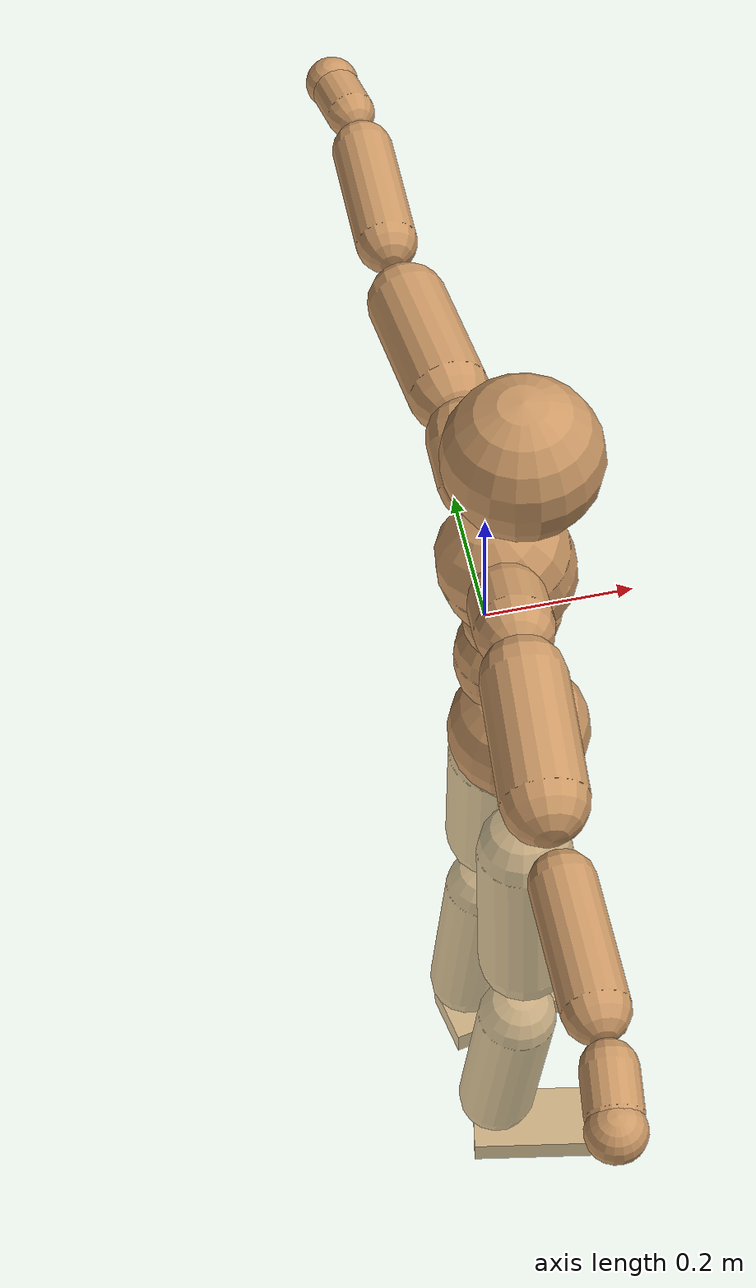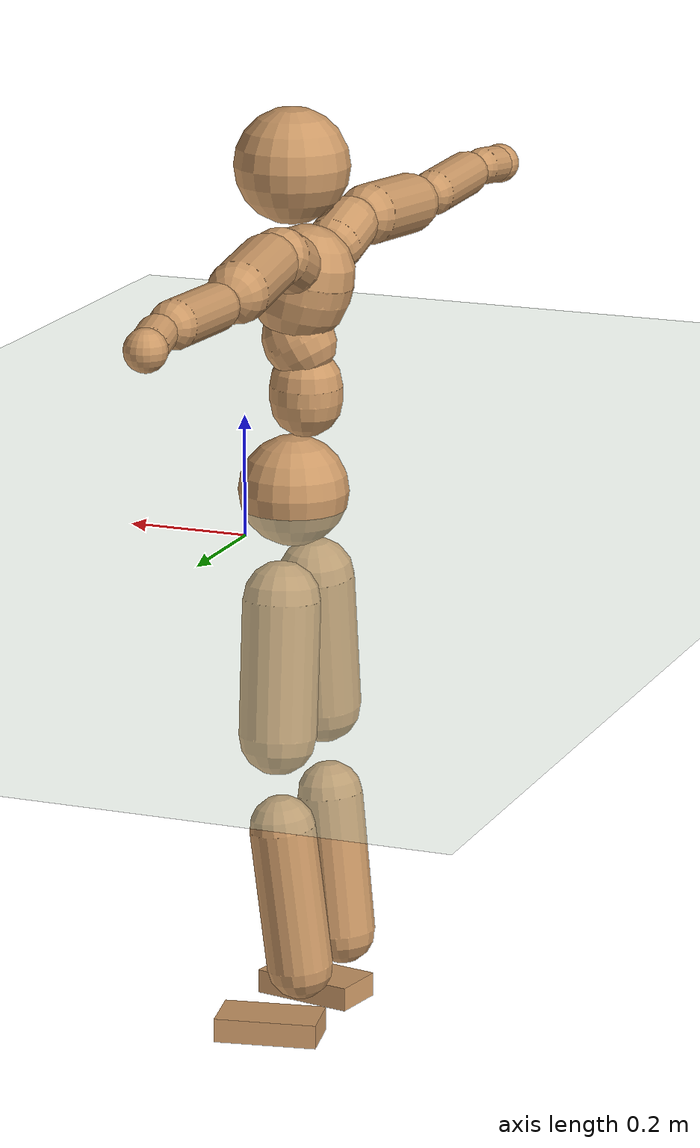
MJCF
<mujoco model="humanoid">
  <compiler coordinate="local"/>
  <default>
    <joint damping="0.0" armature="0.01" stiffness="0.0" limited="true"/>
    <geom conaffinity="1" condim="3" contype="7" margin="0.001" rgba="0.8 0.6 .4 1"/>
  </default>
  <asset>
    <texture type="skybox" builtin="gradient" rgb1=".4 .5 .6" rgb2="0 0 0" width="100" height="100"/>
    <texture builtin="flat" height="1278" mark="cross" markrgb="1 1 1" name="texgeom" random="0.01" rgb1="0.8 0.6 0.4" rgb2="0.8 0.6 0.4" type="cube" width="127"/>
    <texture builtin="checker" height="100" name="texplane" rgb1="0 0 0" rgb2="0.8 0.8 0.8" type="2d" width="100"/>
    <material name="MatPlane" reflectance="0.5" shininess="1" specular="1" texrepeat="60 60" texture="texplane"/>
    <material name="geom" texture="texgeom" texuniform="true"/>
  </asset>
  <worldbody>
    <light cutoff="100" diffuse="1 1 1" dir="-0 0 -1.3" directional="true" exponent="1" pos="0 0 1.3" specular=".1 .1 .1"/>
    <geom conaffinity="1" condim="3" name="floor" pos="0 0 0" rgba="0.8 0.9 0.8 1" size="100 100 .2" type="plane" material="MatPlane"/>
    <body name="Pelvis" pos="-0.0011 -0.2034 0.027">
      <freejoint name="Pelvis"/>
      <geom type="sphere" contype="1" conaffinity="1" density="500" size="0.0925" pos="0.0000 0.0000 0.0000" name="Pelvis"/>
      <body name="L_Hip" pos="-0.0105 0.0732 -0.0892">
        <joint name="L_Hip_x" type="hinge" pos="0 0 0" axis="1 0 0" stiffness="800" damping="80" armature="0.02" range="-180.0000 180.0000"/>
        <joint name="L_Hip_y" type="hinge" pos="0 0 0" axis="0 1 0" stiffness="800" damping="80" armature="0.02" range="-180.0000 180.0000"/>
        <joint name="L_Hip_z" type="hinge" pos="0 0 0" axis="0 0 1" stiffness="800" damping="80" armature="0.02" range="-180.0000 180.0000"/>
        <geom type="capsule" contype="1" conaffinity="1" density="500" fromto="-0.0004 0.0069 -0.0764 -0.0016 0.0277 -0.3057" size="0.0648" name="L_Hip"/>
        <body name="L_Knee" pos="-0.002 0.0347 -0.3822">
          <joint name="L_Knee_x" type="hinge" pos="0 0 0" axis="1 0 0" stiffness="800" damping="80" armature="0.02" range="-180.0000 180.0000"/>
          <joint name="L_Knee_y" type="hinge" pos="0 0 0" axis="0 1 0" stiffness="800" damping="80" armature="0.02" range="-180.0000 180.0000"/>
          <joint name="L_Knee_z" type="hinge" pos="0 0 0" axis="0 0 1" stiffness="800" damping="80" armature="0.02" range="-180.0000 180.0000"/>
          <geom type="capsule" contype="1" conaffinity="1" density="500" fromto="-0.0093 -0.0025 -0.0807 -0.0372 -0.0101 -0.3227" size="0.0555" name="L_Knee"/>
          <body name="L_Ankle" pos="-0.0465 -0.0126 -0.4034">
            <joint name="L_Ankle_x" type="hinge" pos="0 0 0" axis="1 0 0" stiffness="800" damping="80" armature="0.02" range="-180.0000 180.0000"/>
            <joint name="L_Ankle_y" type="hinge" pos="0 0 0" axis="0 1 0" stiffness="800" damping="80" armature="0.02" range="-180.0000 180.0000"/>
            <joint name="L_Ankle_z" type="hinge" pos="0 0 0" axis="0 0 1" stiffness="800" damping="80" armature="0.02" range="-180.0000 180.0000"/>
            <geom type="box" contype="1" conaffinity="1" density="500" pos="0.0600 0.0113 -0.0283" size="0.0866 0.0462 0.0205" quat="0.9956 0.0000 0.0000 0.0934" name="L_Ankle"/>
            <body name="L_Toe" pos="0.1199 0.0227 -0.0566">
              <joint name="L_Toe_x" type="hinge" pos="0 0 0" axis="1 0 0" stiffness="500" damping="50" armature="0.02" range="-180.0000 180.0000"/>
              <joint name="L_Toe_y" type="hinge" pos="0 0 0" axis="0 1 0" stiffness="500" damping="50" armature="0.02" range="-180.0000 180.0000"/>
              <joint name="L_Toe_z" type="hinge" pos="0 0 0" axis="0 0 1" stiffness="500" damping="50" armature="0.02" range="-180.0000 180.0000"/>
              <geom type="box" contype="1" conaffinity="1" density="500" pos="0.0000 0.0000 0.0278" size="0.0009 0.0023 0.001" quat="0.9950 0.0000 0.0000 0.0998" name="L_Toe"/>
            </body>
          </body>
        </body>
      </body>
      <body name="R_Hip" pos="-0.0072 -0.0708 -0.0878">
        <joint name="R_Hip_x" type="hinge" pos="0 0 0" axis="1 0 0" stiffness="800" damping="80" armature="0.02" range="-180.0000 180.0000"/>
        <joint name="R_Hip_y" type="hinge" pos="0 0 0" axis="0 1 0" stiffness="800" damping="80" armature="0.02" range="-180.0000 180.0000"/>
        <joint name="R_Hip_z" type="hinge" pos="0 0 0" axis="0 0 1" stiffness="800" damping="80" armature="0.02" range="-180.0000 180.0000"/>
        <geom type="capsule" contype="1" conaffinity="1" density="500" fromto="-0.0011 -0.0081 -0.0777 -0.0042 -0.0322 -0.3109" size="0.064" name="R_Hip"/>
        <body name="R_Knee" pos="-0.0053 -0.0403 -0.3886">
          <joint name="R_Knee_x" type="hinge" pos="0 0 0" axis="1 0 0" stiffness="800" damping="80" armature="0.02" range="-180.0000 180.0000"/>
          <joint name="R_Knee_y" type="hinge" pos="0 0 0" axis="0 1 0" stiffness="800" damping="80" armature="0.02" range="-180.0000 180.0000"/>
          <joint name="R_Knee_z" type="hinge" pos="0 0 0" axis="0 0 1" stiffness="800" damping="80" armature="0.02" range="-180.0000 180.0000"/>
          <geom type="capsule" contype="1" conaffinity="1" density="500" fromto="-0.0090 0.0029 -0.0805 -0.0358 0.0115 -0.3219" size="0.0557" name="R_Knee"/>
          <body name="R_Ankle" pos="-0.0448 0.0144 -0.4024">
            <joint name="R_Ankle_x" type="hinge" pos="0 0 0" axis="1 0 0" stiffness="800" damping="80" armature="0.02" range="-180.0000 180.0000"/>
            <joint name="R_Ankle_y" type="hinge" pos="0 0 0" axis="0 1 0" stiffness="800" damping="80" armature="0.02" range="-180.0000 180.0000"/>
            <joint name="R_Ankle_z" type="hinge" pos="0 0 0" axis="0 0 1" stiffness="800" damping="80" armature="0.02" range="-180.0000 180.0000"/>
            <geom type="box" contype="1" conaffinity="1" density="500" pos="0.0617 -0.0114 -0.0244" size="0.0872 0.0464 0.0204" quat="0.9958 0.0000 0.0000 -0.0916" name="R_Ankle"/>
            <body name="R_Toe" pos="0.1233 -0.0229 -0.0487">
              <joint name="R_Toe_x" type="hinge" pos="0 0 0" axis="1 0 0" stiffness="500" damping="50" armature="0.02" range="-180.0000 180.0000"/>
              <joint name="R_Toe_y" type="hinge" pos="0 0 0" axis="0 1 0" stiffness="500" damping="50" armature="0.02" range="-180.0000 180.0000"/>
              <joint name="R_Toe_z" type="hinge" pos="0 0 0" axis="0 0 1" stiffness="500" damping="50" armature="0.02" range="-180.0000 180.0000"/>
              <geom type="box" contype="1" conaffinity="1" density="500" pos="0.0000 0.0000 0.0261" size="0.0009 0.0023 0.0011" quat="0.9966 0.0000 0.0000 -0.0825" name="R_Toe"/>
            </body>
          </body>
        </body>
      </body>
      <body name="Torso" pos="-0.0206 -0.0025 0.1032">
        <joint name="Torso_x" type="hinge" pos="0 0 0" axis="1 0 0" stiffness="1000" damping="100" armature="0.02" range="-180.0000 180.0000"/>
        <joint name="Torso_y" type="hinge" pos="0 0 0" axis="0 1 0" stiffness="1000" damping="100" armature="0.02" range="-180.0000 180.0000"/>
        <joint name="Torso_z" type="hinge" pos="0 0 0" axis="0 0 1" stiffness="1000" damping="100" armature="0.02" range="-180.0000 180.0000"/>
        <geom type="capsule" contype="1" conaffinity="1" density="500" fromto="-0.0018 0.0020 0.0769 -0.0012 0.0013 0.0513" size="0.060915" name="Torso"/>
        <body name="Spine" pos="-0.0031 0.0033 0.1282">
          <joint name="Spine_x" type="hinge" pos="0 0 0" axis="1 0 0" stiffness="1000" damping="100" armature="0.02" range="-180.0000 180.0000"/>
          <joint name="Spine_y" type="hinge" pos="0 0 0" axis="0 1 0" stiffness="1000" damping="100" armature="0.02" range="-180.0000 180.0000"/>
          <joint name="Spine_z" type="hinge" pos="0 0 0" axis="0 0 1" stiffness="1000" damping="100" armature="0.02" range="-180.0000 180.0000"/>
          <geom type="capsule" contype="1" conaffinity="1" density="500" fromto="0.0153 0.0012 0.0281 0.0102 0.0008 0.0187" size="0.059985" name="Spine"/>
          <body name="Chest" pos="0.0255 0.002 0.0468">
            <joint name="Chest_x" type="hinge" pos="0 0 0" axis="1 0 0" stiffness="1000" damping="100" armature="0.02" range="-180.0000 180.0000"/>
            <joint name="Chest_y" type="hinge" pos="0 0 0" axis="0 1 0" stiffness="1000" damping="100" armature="0.02" range="-180.0000 180.0000"/>
            <joint name="Chest_z" type="hinge" pos="0 0 0" axis="0 0 1" stiffness="1000" damping="100" armature="0.02" range="-180.0000 180.0000"/>
            <geom type="capsule" contype="1" conaffinity="1" density="500" fromto="-0.0239 -0.0009 0.0876 -0.0159 -0.0006 0.0584" size="0.082584" name="Chest"/>
            <body name="Neck" pos="-0.0474 -0.0029 0.207">
              <joint name="Neck_x" type="hinge" pos="0 0 0" axis="1 0 0" stiffness="500" damping="50" armature="0.02" range="-180.0000 180.0000"/>
              <joint name="Neck_y" type="hinge" pos="0 0 0" axis="0 1 0" stiffness="500" damping="50" armature="0.02" range="-180.0000 180.0000"/>
              <joint name="Neck_z" type="hinge" pos="0 0 0" axis="0 0 1" stiffness="500" damping="50" armature="0.02" range="-180.0000 180.0000"/>
              <geom type="capsule" contype="1" conaffinity="1" density="500" fromto="0.0091 0.0008 0.0119 0.0365 0.0032 0.0476" size="0.037014" name="Neck"/>
              <body name="Head" pos="0.0457 0.0041 0.0595">
                <joint name="Head_x" type="hinge" pos="0 0 0" axis="1 0 0" stiffness="500" damping="50" armature="0.02" range="-180.0000 180.0000"/>
                <joint name="Head_y" type="hinge" pos="0 0 0" axis="0 1 0" stiffness="500" damping="50" armature="0.02" range="-180.0000 180.0000"/>
                <joint name="Head_z" type="hinge" pos="0 0 0" axis="0 0 1" stiffness="500" damping="50" armature="0.02" range="-180.0000 180.0000"/>
                <geom type="sphere" contype="1" conaffinity="1" density="500" size="0.0959" pos="0.0000 0.0000 0.0000" name="Head"/>
              </body>
            </body>
            <body name="L_Thorax" pos="-0.0337 0.0721 0.1163">
              <joint name="L_Thorax_x" type="hinge" pos="0 0 0" axis="1 0 0" stiffness="500" damping="50" armature="0.02" range="-180.0000 180.0000"/>
              <joint name="L_Thorax_y" type="hinge" pos="0 0 0" axis="0 1 0" stiffness="500" damping="50" armature="0.02" range="-180.0000 180.0000"/>
              <joint name="L_Thorax_z" type="hinge" pos="0 0 0" axis="0 0 1" stiffness="500" damping="50" armature="0.02" range="-180.0000 180.0000"/>
              <geom type="capsule" contype="1" conaffinity="1" density="500" fromto="-0.0009 0.0171 0.0071 -0.0037 0.0686 0.0285" size="0.0493" name="L_Thorax"/>
              <body name="L_Shoulder" pos="-0.0047 0.0857 0.0357">
                <joint name="L_Shoulder_x" type="hinge" pos="0 0 0" axis="1 0 0" stiffness="500" damping="50" armature="0.02" range="-720.0000 720.0000"/>
                <joint name="L_Shoulder_y" type="hinge" pos="0 0 0" axis="0 1 0" stiffness="500" damping="50" armature="0.02" range="-720.0000 720.0000"/>
                <joint name="L_Shoulder_z" type="hinge" pos="0 0 0" axis="0 0 1" stiffness="500" damping="50" armature="0.02" range="-720.0000 720.0000"/>
                <geom type="capsule" contype="1" conaffinity="1" density="500" fromto="-0.0057 0.0534 -0.0037 -0.0228 0.2135 -0.0147" size="0.0505" name="L_Shoulder"/>
                <body name="L_Elbow" pos="-0.0285 0.2668 -0.0184">
                  <joint name="L_Elbow_x" type="hinge" pos="0 0 0" axis="1 0 0" stiffness="500" damping="50" armature="0.02" range="-720.0000 720.0000"/>
                  <joint name="L_Elbow_y" type="hinge" pos="0 0 0" axis="0 1 0" stiffness="500" damping="50" armature="0.02" range="-720.0000 720.0000"/>
                  <joint name="L_Elbow_z" type="hinge" pos="0 0 0" axis="0 0 1" stiffness="500" damping="50" armature="0.02" range="-720.0000 720.0000"/>
                  <geom type="capsule" contype="1" conaffinity="1" density="500" fromto="0.0002 0.0520 0.0021 0.0009 0.2081 0.0082" size="0.0392" name="L_Elbow"/>
                  <body name="L_Wrist" pos="0.0011 0.2601 0.0103">
                    <joint name="L_Wrist_x" type="hinge" pos="0 0 0" axis="1 0 0" stiffness="300" damping="30" armature="0.02" range="-180.0000 180.0000"/>
                    <joint name="L_Wrist_y" type="hinge" pos="0 0 0" axis="0 1 0" stiffness="300" damping="30" armature="0.02" range="-180.0000 180.0000"/>
                    <joint name="L_Wrist_z" type="hinge" pos="0 0 0" axis="0 0 1" stiffness="300" damping="30" armature="0.02" range="-180.0000 180.0000"/>
                    <geom type="capsule" contype="1" conaffinity="1" density="500" fromto="-0.0028 0.0171 -0.0021 -0.0114 0.0682 -0.0086" size="0.0317" name="L_Wrist"/>
                    <body name="L_Hand" pos="-0.0142 0.0853 -0.0107">
                      <joint name="L_Hand_x" type="hinge" pos="0 0 0" axis="1 0 0" stiffness="300" damping="30" armature="0.02" range="-180.0000 180.0000"/>
                      <joint name="L_Hand_y" type="hinge" pos="0 0 0" axis="0 1 0" stiffness="300" damping="30" armature="0.02" range="-180.0000 180.0000"/>
                      <joint name="L_Hand_z" type="hinge" pos="0 0 0" axis="0 0 1" stiffness="300" damping="30" armature="0.02" range="-180.0000 180.0000"/>
                      <geom type="sphere" contype="1" conaffinity="1" density="500" size="0.0342" pos="0.0000 0.0000 0.0000" name="L_Hand"/>
                    </body>
                  </body>
                </body>
              </body>
            </body>
            <body name="R_Thorax" pos="-0.0381 -0.0736 0.1147">
              <joint name="R_Thorax_x" type="hinge" pos="0 0 0" axis="1 0 0" stiffness="500" damping="50" armature="0.02" range="-180.0000 180.0000"/>
              <joint name="R_Thorax_y" type="hinge" pos="0 0 0" axis="0 1 0" stiffness="500" damping="50" armature="0.02" range="-180.0000 180.0000"/>
              <joint name="R_Thorax_z" type="hinge" pos="0 0 0" axis="0 0 1" stiffness="500" damping="50" armature="0.02" range="-180.0000 180.0000"/>
              <geom type="capsule" contype="1" conaffinity="1" density="500" fromto="-0.0013 -0.0179 0.0071 -0.0053 -0.0718 0.0285" size="0.0479" name="R_Thorax"/>
              <body name="R_Shoulder" pos="-0.0066 -0.0897 0.0357">
                <joint name="R_Shoulder_x" type="hinge" pos="0 0 0" axis="1 0 0" stiffness="500" damping="50" armature="0.02" range="-720.0000 720.0000"/>
                <joint name="R_Shoulder_y" type="hinge" pos="0 0 0" axis="0 1 0" stiffness="500" damping="50" armature="0.02" range="-720.0000 720.0000"/>
                <joint name="R_Shoulder_z" type="hinge" pos="0 0 0" axis="0 0 1" stiffness="500" damping="50" armature="0.02" range="-720.0000 720.0000"/>
                <geom type="capsule" contype="1" conaffinity="1" density="500" fromto="-0.0040 -0.0525 -0.0033 -0.0160 -0.2100 -0.0131" size="0.0514" name="R_Shoulder"/>
                <body name="R_Elbow" pos="-0.02 -0.2625 -0.0164">
                  <joint name="R_Elbow_x" type="hinge" pos="0 0 0" axis="1 0 0" stiffness="500" damping="50" armature="0.02" range="-720.0000 720.0000"/>
                  <joint name="R_Elbow_y" type="hinge" pos="0 0 0" axis="0 1 0" stiffness="500" damping="50" armature="0.02" range="-720.0000 720.0000"/>
                  <joint name="R_Elbow_z" type="hinge" pos="0 0 0" axis="0 0 1" stiffness="500" damping="50" armature="0.02" range="-720.0000 720.0000"/>
                  <geom type="capsule" contype="1" conaffinity="1" density="500" fromto="-0.0007 -0.0529 0.0016 -0.0028 -0.2115 0.0064" size="0.0387" name="R_Elbow"/>
                  <body name="R_Wrist" pos="-0.0036 -0.2644 0.008">
                    <joint name="R_Wrist_x" type="hinge" pos="0 0 0" axis="1 0 0" stiffness="300" damping="30" armature="0.02" range="-180.0000 180.0000"/>
                    <joint name="R_Wrist_y" type="hinge" pos="0 0 0" axis="0 1 0" stiffness="300" damping="30" armature="0.02" range="-180.0000 180.0000"/>
                    <joint name="R_Wrist_z" type="hinge" pos="0 0 0" axis="0 0 1" stiffness="300" damping="30" armature="0.02" range="-180.0000 180.0000"/>
                    <geom type="capsule" contype="1" conaffinity="1" density="500" fromto="-0.0023 -0.0171 -0.0016 -0.0090 -0.0685 -0.0063" size="0.0322" name="R_Wrist"/>
                    <body name="R_Hand" pos="-0.0113 -0.0856 -0.0078">
                      <joint name="R_Hand_x" type="hinge" pos="0 0 0" axis="1 0 0" stiffness="300" damping="30" armature="0.02" range="-180.0000 180.0000"/>
                      <joint name="R_Hand_y" type="hinge" pos="0 0 0" axis="0 1 0" stiffness="300" damping="30" armature="0.02" range="-180.0000 180.0000"/>
                      <joint name="R_Hand_z" type="hinge" pos="0 0 0" axis="0 0 1" stiffness="300" damping="30" armature="0.02" range="-180.0000 180.0000"/>
                      <geom type="sphere" contype="1" conaffinity="1" density="500" size="0.0341" pos="0.0000 0.0000 0.0000" name="R_Hand"/>
                    </body>
                  </body>
                </body>
              </body>
            </body>
          </body>
        </body>
      </body>
    </body>
  </worldbody>
  <actuator>
    <motor name="L_Hip_x" joint="L_Hip_x" gear="500"/>
    <motor name="L_Hip_y" joint="L_Hip_y" gear="500"/>
    <motor name="L_Hip_z" joint="L_Hip_z" gear="500"/>
    <motor name="L_Knee_x" joint="L_Knee_x" gear="500"/>
    <motor name="L_Knee_y" joint="L_Knee_y" gear="500"/>
    <motor name="L_Knee_z" joint="L_Knee_z" gear="500"/>
    <motor name="L_Ankle_x" joint="L_Ankle_x" gear="500"/>
    <motor name="L_Ankle_y" joint="L_Ankle_y" gear="500"/>
    <motor name="L_Ankle_z" joint="L_Ankle_z" gear="500"/>
    <motor name="L_Toe_x" joint="L_Toe_x" gear="500"/>
    <motor name="L_Toe_y" joint="L_Toe_y" gear="500"/>
    <motor name="L_Toe_z" joint="L_Toe_z" gear="500"/>
    <motor name="R_Hip_x" joint="R_Hip_x" gear="500"/>
    <motor name="R_Hip_y" joint="R_Hip_y" gear="500"/>
    <motor name="R_Hip_z" joint="R_Hip_z" gear="500"/>
    <motor name="R_Knee_x" joint="R_Knee_x" gear="500"/>
    <motor name="R_Knee_y" joint="R_Knee_y" gear="500"/>
    <motor name="R_Knee_z" joint="R_Knee_z" gear="500"/>
    <motor name="R_Ankle_x" joint="R_Ankle_x" gear="500"/>
    <motor name="R_Ankle_y" joint="R_Ankle_y" gear="500"/>
    <motor name="R_Ankle_z" joint="R_Ankle_z" gear="500"/>
    <motor name="R_Toe_x" joint="R_Toe_x" gear="500"/>
    <motor name="R_Toe_y" joint="R_Toe_y" gear="500"/>
    <motor name="R_Toe_z" joint="R_Toe_z" gear="500"/>
    <motor name="Torso_x" joint="Torso_x" gear="500"/>
    <motor name="Torso_y" joint="Torso_y" gear="500"/>
    <motor name="Torso_z" joint="Torso_z" gear="500"/>
    <motor name="Spine_x" joint="Spine_x" gear="500"/>
    <motor name="Spine_y" joint="Spine_y" gear="500"/>
    <motor name="Spine_z" joint="Spine_z" gear="500"/>
    <motor name="Chest_x" joint="Chest_x" gear="500"/>
    <motor name="Chest_y" joint="Chest_y" gear="500"/>
    <motor name="Chest_z" joint="Chest_z" gear="500"/>
    <motor name="Neck_x" joint="Neck_x" gear="500"/>
    <motor name="Neck_y" joint="Neck_y" gear="500"/>
    <motor name="Neck_z" joint="Neck_z" gear="500"/>
    <motor name="Head_x" joint="Head_x" gear="500"/>
    <motor name="Head_y" joint="Head_y" gear="500"/>
    <motor name="Head_z" joint="Head_z" gear="500"/>
    <motor name="L_Thorax_x" joint="L_Thorax_x" gear="500"/>
    <motor name="L_Thorax_y" joint="L_Thorax_y" gear="500"/>
    <motor name="L_Thorax_z" joint="L_Thorax_z" gear="500"/>
    <motor name="L_Shoulder_x" joint="L_Shoulder_x" gear="500"/>
    <motor name="L_Shoulder_y" joint="L_Shoulder_y" gear="500"/>
    <motor name="L_Shoulder_z" joint="L_Shoulder_z" gear="500"/>
    <motor name="L_Elbow_x" joint="L_Elbow_x" gear="500"/>
    <motor name="L_Elbow_y" joint="L_Elbow_y" gear="500"/>
    <motor name="L_Elbow_z" joint="L_Elbow_z" gear="500"/>
    <motor name="L_Wrist_x" joint="L_Wrist_x" gear="500"/>
    <motor name="L_Wrist_y" joint="L_Wrist_y" gear="500"/>
    <motor name="L_Wrist_z" joint="L_Wrist_z" gear="500"/>
    <motor name="L_Hand_x" joint="L_Hand_x" gear="500"/>
    <motor name="L_Hand_y" joint="L_Hand_y" gear="500"/>
    <motor name="L_Hand_z" joint="L_Hand_z" gear="500"/>
    <motor name="R_Thorax_x" joint="R_Thorax_x" gear="500"/>
    <motor name="R_Thorax_y" joint="R_Thorax_y" gear="500"/>
    <motor name="R_Thorax_z" joint="R_Thorax_z" gear="500"/>
    <motor name="R_Shoulder_x" joint="R_Shoulder_x" gear="500"/>
    <motor name="R_Shoulder_y" joint="R_Shoulder_y" gear="500"/>
    <motor name="R_Shoulder_z" joint="R_Shoulder_z" gear="500"/>
    <motor name="R_Elbow_x" joint="R_Elbow_x" gear="500"/>
    <motor name="R_Elbow_y" joint="R_Elbow_y" gear="500"/>
    <motor name="R_Elbow_z" joint="R_Elbow_z" gear="500"/>
    <motor name="R_Wrist_x" joint="R_Wrist_x" gear="500"/>
    <motor name="R_Wrist_y" joint="R_Wrist_y" gear="500"/>
    <motor name="R_Wrist_z" joint="R_Wrist_z" gear="500"/>
    <motor name="R_Hand_x" joint="R_Hand_x" gear="500"/>
    <motor name="R_Hand_y" joint="R_Hand_y" gear="500"/>
    <motor name="R_Hand_z" joint="R_Hand_z" gear="500"/>
  </actuator>
  <contact>
    <exclude body1="Torso" body2="Chest"/>
    <exclude body1="Head" body2="Chest"/>
    <exclude body1="R_Knee" body2="R_Toe"/>
    <exclude body1="R_Knee" body2="L_Ankle"/>
    <exclude body1="R_Knee" body2="L_Toe"/>
    <exclude body1="L_Knee" body2="L_Toe"/>
    <exclude body1="L_Knee" body2="R_Ankle"/>
    <exclude body1="L_Knee" body2="R_Toe"/>
    <exclude body1="L_Shoulder" body2="Chest"/>
    <exclude body1="R_Shoulder" body2="Chest"/>
  </contact>
  <sensor/>
  <size njmax="700" nconmax="700"/>
</mujoco>
